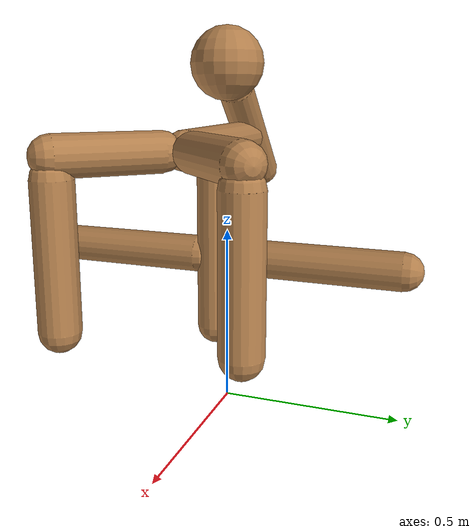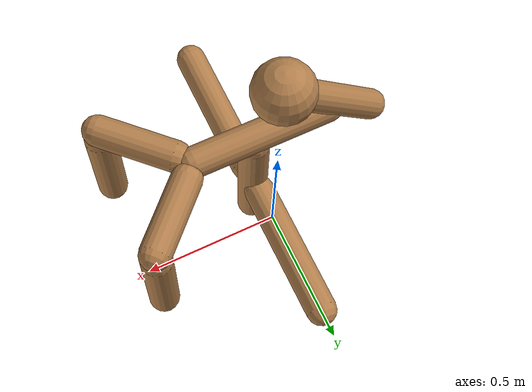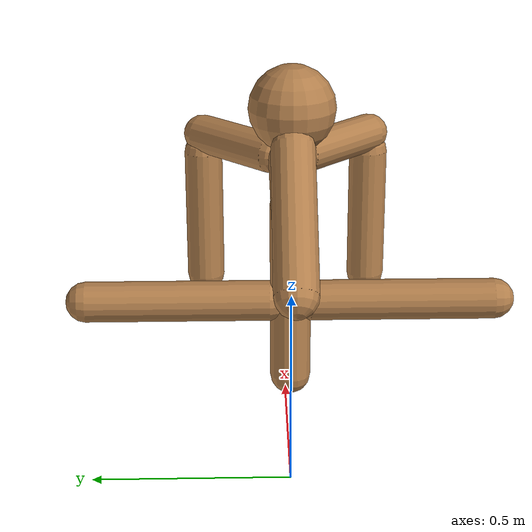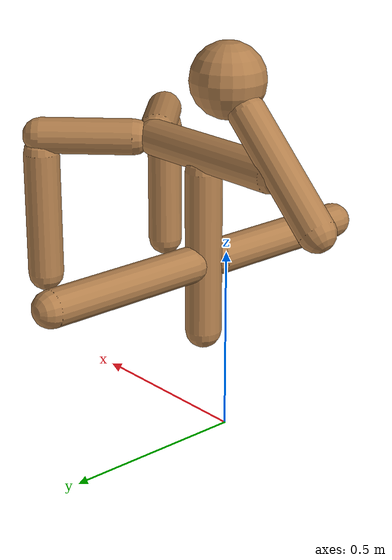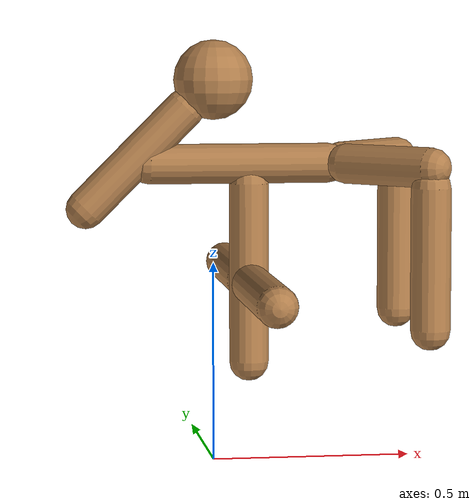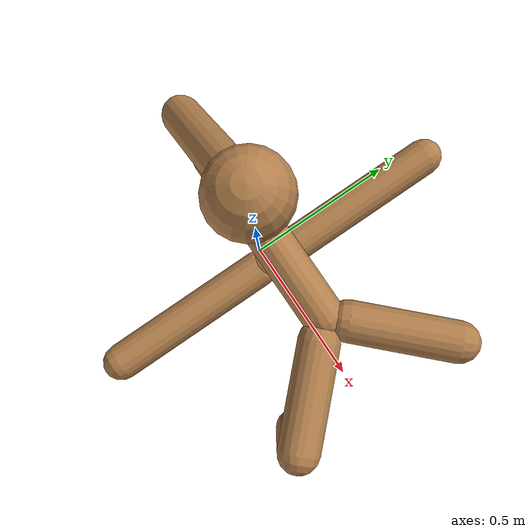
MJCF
<?xml version='1.0' encoding='UTF-8'?>
<!-- Universal Animal Template: unimal -->
<mujoco model="unimal">
  <compiler angle="degree"/>
  <size njmax="2000" nconmax="500"/>
  <option timestep=".005">
    <flag filterparent="disable"/>
  </option>
  <!-- Common defaults to make search space tractable -->
  <default>
    <!-- Define motor defaults -->
    <motor ctrlrange="-1 1" ctrllimited="true"/>
    <!-- Define joint defaults -->
    <default class="normal_joint">
      <joint type="hinge" damping="1" stiffness="1" armature="1" limited="true" range="-120 120" solimplimit="0 0.99 0.01"/>
    </default>
    <default class="walker_joint">
      <joint type="hinge" damping="0.2" stiffness="1" armature=".01" limited="true" range="-120 120" solimplimit="0 0.99 0.01"/>
    </default>
    <default class="stiff_joint">
      <joint type="hinge" damping="5" stiffness="10" armature=".01" limited="true" solimplimit="0 0.99 0.01"/>
    </default>
    <default class="free">
      <joint limited="false" damping="0" armature="0" stiffness="0"/>
    </default>
    <default class="growth_site">
      <site size="1e-6 1e-6 1e-6"/>
    </default>
    <default class="torso_growth_site">
      <site size="1e-6 1e-6 1e-6"/>
    </default>
    <default class="mirror_growth_site">
      <site size="1e-6 1e-6 1e-6"/>
    </default>
    <default class="btm_pos_site">
      <site size="1e-6 1e-6 1e-6"/>
    </default>
    <default class="box_face_site">
      <site size="1e-6 1e-6 1e-6"/>
    </default>
    <default class="imu_vel">
      <site type="box" size="0.05" rgba="1 0 0 0"/>
    </default>
    <default class="touch_site">
      <site group="3" rgba="0 0 1 .3"/>
    </default>
    <default class="food_site">
      <site material="food" size="0.15"/>
    </default>
    <!-- Define geom defaults -->
    <geom type="capsule" condim="3" friction="0.7 0.1 0.1" material="self"/>
  </default>
  <worldbody>
    <light diffuse="1 1 1" directional="true" exponent="1" pos="0 0 8" specular="0.1 0.1 0.1" dir="0 0 -1"/>
    <!-- Programatically generated xml goes here -->
    <body name="torso/0" pos="0 0 0.96">
      <joint name="root" type="free" class="free"/>
      <site name="root" class="imu_vel"/>
      <geom name="torso/0" type="sphere" size="0.1" condim="3" density="700"/>
      <camera name="side" pos="0 -7 2" xyaxes="1 0 0 0 1 2" mode="trackcom"/>
      <site name="torso/0" class="growth_site" pos="0 0 0"/>
      <site name="torso/btm_pos/0" class="btm_pos_site" pos="0 0 -0.1"/>
      <site name="torso/touch/0" class="touch_site" size="0.11"/>
      <site name="torso/vertical/0" class="torso_growth_site" pos="0 0 -0.1"/>
      <body name="limb/0" pos="-0.07 0.0 -0.07">
        <joint name="limbx/0" type="hinge" class="normal_joint" range="-60 0" pos="0.04 0.0 0.04" axis="0.7071 0.0 -0.7071"/>
        <geom name="limb/0" type="capsule" fromto="0.0 0.0 0.0 -0.25 0.0 -0.25" size="0.05" density="700"/>
        <site name="limb/mid/0" class="growth_site" pos="-0.14 0.0 -0.14"/>
        <site name="limb/btm/0" class="growth_site" pos="-0.25 0.0 -0.25"/>
        <site name="limb/btm_pos/0" class="btm_pos_site" pos="-0.25 0.0 -0.25"/>
        <site name="limb/touch/0" class="touch_site" size="0.060000000000000005" fromto="0.0 0.0 0.0 -0.25 0.0 -0.25" type="capsule"/>
        <body name="limb/10" pos="-0.09000000000000001 0.0 -0.14">
          <joint name="limby/10" type="hinge" class="normal_joint" range="0 60" pos="-0.05 0.0 0.0" axis="-0.0 1.0 0.0"/>
          <geom name="limb/10" type="capsule" fromto="0.0 0.0 0.0 0.45 0.0 0.0" size="0.05" density="700"/>
          <site name="limb/mid/10" class="growth_site" pos="0.25 0.0 0.0"/>
          <site name="limb/btm/10" class="growth_site" pos="0.45 0.0 0.0"/>
          <site name="limb/btm_pos/10" class="btm_pos_site" pos="0.5 0.0 0.0"/>
          <site name="limb/touch/10" class="touch_site" size="0.060000000000000005" fromto="0.0 0.0 0.0 0.45 0.0 0.0" type="capsule"/>
          <body name="limb/13" pos="0.49 0.04 0.0">
            <joint name="limbx/13" type="hinge" class="normal_joint" range="-30 0" pos="-0.04 -0.04 0.0" axis="0.5 -0.5 0.7071"/>
            <joint name="limby/13" type="hinge" class="normal_joint" range="-90 0" pos="-0.04 -0.04 0.0" axis="-0.5 0.5 0.7071"/>
            <geom name="limb/13" type="capsule" fromto="0.0 0.0 0.0 0.18 0.18 0.0" size="0.05" density="700"/>
            <site name="limb/mid/13" class="mirror_growth_site" pos="0.11 0.11 0.0"/>
            <site name="limb/btm/13" class="mirror_growth_site" pos="0.18 0.18 0.0"/>
            <site name="limb/btm_pos/13" class="btm_pos_site" pos="0.21 0.21 0.0"/>
            <site name="limb/touch/13" class="touch_site" size="0.060000000000000005" fromto="0.0 0.0 0.0 0.18 0.18 0.0" type="capsule"/>
            <body name="limb/17" pos="0.18 0.18 -0.05">
              <joint name="limby/17" type="hinge" class="normal_joint" range="-30 30" pos="0.0 0.0 0.05" axis="0.0 1.0 0.0"/>
              <geom name="limb/17" type="capsule" fromto="0.0 0.0 0.0 0.0 0.0 -0.35" size="0.05" density="700"/>
              <site name="limb/mid/17" class="mirror_growth_site" pos="0.0 0.0 -0.2"/>
              <site name="limb/btm/17" class="mirror_growth_site" pos="0.0 0.0 -0.35"/>
              <site name="limb/btm_pos/17" class="btm_pos_site" pos="0.0 0.0 -0.4"/>
              <site name="limb/touch/17" class="touch_site" size="0.060000000000000005" fromto="0.0 0.0 0.0 0.0 0.0 -0.35" type="capsule"/>
            </body>
          </body>
          <body name="limb/14" pos="0.49 -0.04 0.0">
            <joint name="limbx/14" type="hinge" class="normal_joint" range="-30 0" pos="-0.04 0.04 0.0" axis="0.5 0.5 0.7071"/>
            <joint name="limby/14" type="hinge" class="normal_joint" range="-90 0" pos="-0.04 0.04 0.0" axis="0.5 0.5 -0.7071"/>
            <geom name="limb/14" type="capsule" fromto="0.0 0.0 0.0 0.18 -0.18 0.0" size="0.05" density="700"/>
            <site name="limb/mid/14" class="mirror_growth_site" pos="0.11 -0.11 0.0"/>
            <site name="limb/btm/14" class="mirror_growth_site" pos="0.18 -0.18 0.0"/>
            <site name="limb/btm_pos/14" class="btm_pos_site" pos="0.21 -0.21 0.0"/>
            <site name="limb/touch/14" class="touch_site" size="0.060000000000000005" fromto="0.0 0.0 0.0 0.18 -0.18 0.0" type="capsule"/>
            <body name="limb/18" pos="0.18 -0.18 -0.05">
              <joint name="limby/18" type="hinge" class="normal_joint" range="-30 30" pos="0.0 0.0 0.05" axis="0.0 1.0 0.0"/>
              <geom name="limb/18" type="capsule" fromto="0.0 0.0 0.0 0.0 0.0 -0.35" size="0.05" density="700"/>
              <site name="limb/mid/18" class="mirror_growth_site" pos="0.0 0.0 -0.2"/>
              <site name="limb/btm/18" class="mirror_growth_site" pos="0.0 0.0 -0.35"/>
              <site name="limb/btm_pos/18" class="btm_pos_site" pos="0.0 0.0 -0.4"/>
              <site name="limb/touch/18" class="touch_site" size="0.060000000000000005" fromto="0.0 0.0 0.0 0.0 0.0 -0.35" type="capsule"/>
            </body>
          </body>
          <body name="limb/19" pos="0.25 0.0 -0.05">
            <joint name="limbx/19" type="hinge" class="normal_joint" range="-30 60" pos="0.0 0.0 0.05" axis="1.0 0.0 0.0"/>
            <geom name="limb/19" type="capsule" fromto="0.0 0.0 0.0 0.0 0.0 -0.45" size="0.05" density="700"/>
            <site name="limb/mid/19" class="growth_site" pos="0.0 0.0 -0.25"/>
            <site name="limb/btm/19" class="growth_site" pos="0.0 0.0 -0.45"/>
            <site name="limb/btm_pos/19" class="btm_pos_site" pos="0.0 0.0 -0.5"/>
            <site name="limb/touch/19" class="touch_site" size="0.060000000000000005" fromto="0.0 0.0 0.0 0.0 0.0 -0.45" type="capsule"/>
            <body name="limb/20" pos="0.0 0.05 -0.25">
              <joint name="limbx/20" type="hinge" class="normal_joint" range="-30 0" pos="0.0 -0.05 0.0" axis="1.0 0.0 0.0"/>
              <joint name="limby/20" type="hinge" class="normal_joint" range="-60 30" pos="0.0 -0.05 0.0" axis="0.0 0.0 1.0"/>
              <geom name="limb/20" type="capsule" fromto="0.0 0.0 0.0 0.0 0.45 0.0" size="0.05" density="700"/>
              <site name="limb/mid/20" class="mirror_growth_site" pos="0.0 0.25 0.0"/>
              <site name="limb/btm/20" class="mirror_growth_site" pos="0.0 0.45 0.0"/>
              <site name="limb/btm_pos/20" class="btm_pos_site" pos="0.0 0.5 0.0"/>
              <site name="limb/touch/20" class="touch_site" size="0.060000000000000005" fromto="0.0 0.0 0.0 0.0 0.45 0.0" type="capsule"/>
            </body>
            <body name="limb/21" pos="0.0 -0.05 -0.25">
              <joint name="limbx/21" type="hinge" class="normal_joint" range="-30 0" pos="0.0 0.05 0.0" axis="1.0 0.0 -0.0"/>
              <joint name="limby/21" type="hinge" class="normal_joint" range="-60 30" pos="0.0 0.05 0.0" axis="-0.0 0.0 -1.0"/>
              <geom name="limb/21" type="capsule" fromto="0.0 0.0 0.0 0.0 -0.45 0.0" size="0.05" density="700"/>
              <site name="limb/mid/21" class="mirror_growth_site" pos="0.0 -0.25 0.0"/>
              <site name="limb/btm/21" class="mirror_growth_site" pos="0.0 -0.45 0.0"/>
              <site name="limb/btm_pos/21" class="btm_pos_site" pos="0.0 -0.5 0.0"/>
              <site name="limb/touch/21" class="touch_site" size="0.060000000000000005" fromto="0.0 0.0 0.0 0.0 -0.45 0.0" type="capsule"/>
            </body>
          </body>
        </body>
      </body>
    </body>
  </worldbody>
  <actuator>
    <motor joint="limbx/0" gear="250" name="limbx/0"/>
    <motor joint="limby/10" gear="300" name="limby/10"/>
    <motor joint="limbx/13" gear="200" name="limbx/13"/>
    <motor joint="limby/13" gear="150" name="limby/13"/>
    <motor joint="limby/17" gear="250" name="limby/17"/>
    <motor joint="limbx/14" gear="200" name="limbx/14"/>
    <motor joint="limby/14" gear="150" name="limby/14"/>
    <motor joint="limby/18" gear="250" name="limby/18"/>
    <motor joint="limbx/19" gear="300" name="limbx/19"/>
    <motor joint="limbx/20" gear="250" name="limbx/20"/>
    <motor joint="limby/20" gear="300" name="limby/20"/>
    <motor joint="limbx/21" gear="250" name="limbx/21"/>
    <motor joint="limby/21" gear="300" name="limby/21"/>
  </actuator>
  <sensor>
    <accelerometer name="torso_accel" site="root"/>
    <gyro name="torso_gyro" site="root"/>
    <velocimeter name="torso_vel" site="root"/>
    <subtreeangmom name="unimal_am" body="torso/0"/>
    <touch name="torso/0" site="torso/touch/0"/>
    <touch name="limb/0" site="limb/touch/0"/>
    <touch name="limb/10" site="limb/touch/10"/>
    <touch name="limb/13" site="limb/touch/13"/>
    <touch name="limb/17" site="limb/touch/17"/>
    <touch name="limb/14" site="limb/touch/14"/>
    <touch name="limb/18" site="limb/touch/18"/>
    <touch name="limb/19" site="limb/touch/19"/>
    <touch name="limb/20" site="limb/touch/20"/>
    <touch name="limb/21" site="limb/touch/21"/>
  </sensor>
  <!-- Add hfield assets -->
  <asset/>
  <!-- List of contacts to exclude -->
  <contact>
    <exclude name="limb/13:limb/14" body1="limb/13" body2="limb/14"/>
  </contact>
  <!-- Define material, texture etc -->
  <asset>
    <material name="grid" texture="grid" texrepeat="1 1" texuniform="true" reflectance="0.1"/>
    <material name="hfield" texture="hfield" texrepeat="1 1" texuniform="true" reflectance="0.1"/>
    <material name="wall" texture="wall" texrepeat="1 1" texuniform="true" reflectance=".5"/>
    <material name="platform" texture="platform" texrepeat="1 1" texuniform="true" reflectance=".5"/>
    <material name="boundary" texture="boundary" texrepeat="1 1" texuniform="true" reflectance=".5"/>
    <material name="jump" texture="jump" texrepeat="1 1" texuniform="true" reflectance=".5"/>
    <material name="goal" rgba="1 0 0 1"/>
    <material name="food" rgba="0 0 1 1" emission="1"/>
    <material name="init_position" rgba="0 1 0 0.7"/>
    <material name="self" rgba=".7 .5 .3 1"/>
    <material name="self_invisible" rgba=".7 .5 .3 0"/>
    <material name="self_default" rgba=".7 .5 .3 1"/>
    <material name="self_highlight" rgba="0 .5 .3 1"/>
    <material name="effector" rgba=".7 .4 .2 1"/>
    <material name="effector_default" rgba=".7 .4 .2 1"/>
    <material name="effector_highlight" rgba="0 .5 .3 1"/>
    <material name="decoration" rgba=".3 .5 .7 1"/>
    <material name="eye" rgba="0 .2 1 1"/>
    <material name="target" rgba=".6 .3 .3 1"/>
    <material name="target_default" rgba=".6 .3 .3 1"/>
    <material name="target_highlight" rgba=".6 .3 .3 .4"/>
    <material name="site" rgba=".5 .5 .5 .3"/>
    <material name="ball" texture="ball"/>
  </asset>
  <asset>
    <texture name="grid" type="2d" builtin="checker" rgb1="0.4 0.4 0.4" rgb2="0.4 0.4 0.4" width="300" height="300" mark="edge" markrgb="0.2 0.2 0.2"/>
    <texture name="hfield" type="2d" builtin="checker" rgb1="0.4 0.4 0.4" rgb2="0.4 0.4 0.4" width="300" height="300" mark="edge" markrgb="0.2 0.2 0.2"/>
    <texture name="wall" type="2d" builtin="flat" rgb1="0.9 0.7 0" rgb2="0.9 0.7 0" width="300" height="300"/>
    <texture name="platform" type="2d" builtin="flat" rgb1="0.3 0 0.8" rgb2="0.3 0 0.8" width="300" height="300"/>
    <texture name="boundary" type="2d" builtin="flat" rgb1="0.3 0.3 0.3" rgb2="0.3 0.3 0.3" width="300" height="300"/>
    <texture name="jump" type="2d" builtin="flat" rgb1="0.3 0.3 0.3" rgb2="0.3 0.3 0.3" width="300" height="300"/>
    <texture name="skybox" type="skybox" builtin="gradient" rgb1="1 1 1" rgb2="0.6 0.6 0.6" width="800" height="800"/>
    <texture name="ball" builtin="checker" mark="cross" width="151" height="151" rgb1="0.1 0.1 0.1" rgb2="0.9 0.9 0.9" markrgb="1 1 1"/>
  </asset>
  <visual>
    <headlight ambient="0.6 0.6 0.6" diffuse="0.3 0.3 0.3" specular="0 0 0"/>
    <map znear=".01" shadowclip="0.5"/>
    <quality shadowsize="16384"/>
  </visual>
</mujoco>
